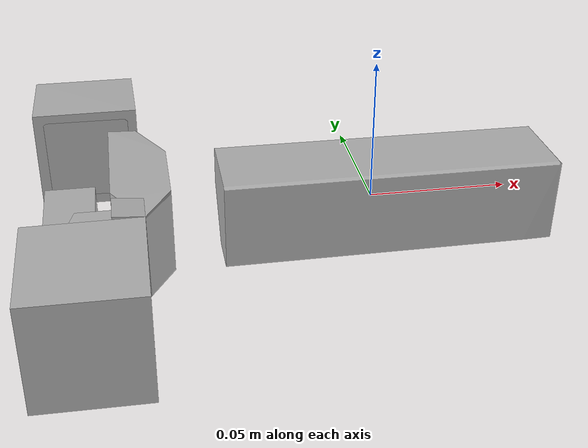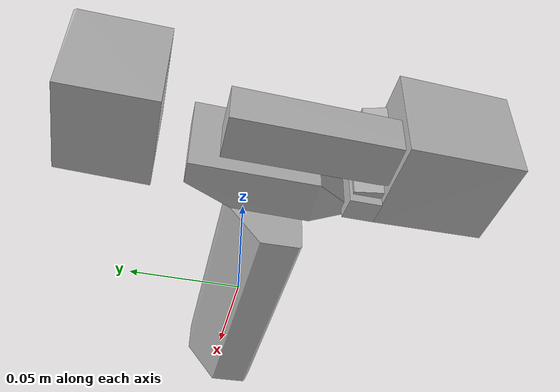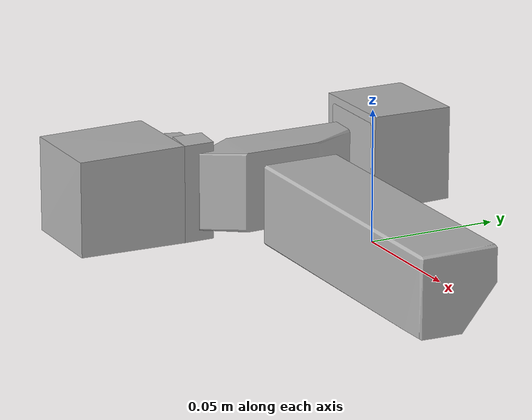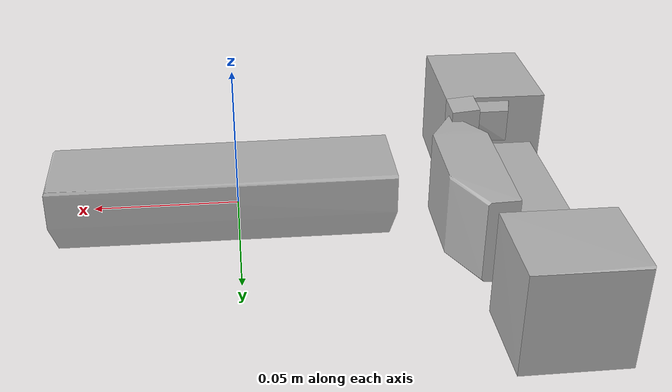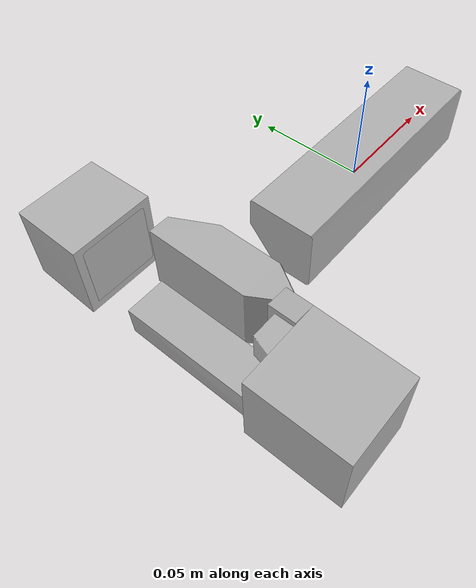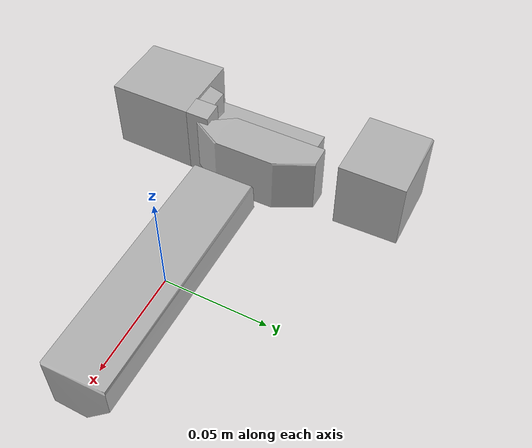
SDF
<?xml version="1.0"?>
<sdf version="1.7">
  <model name="t_shape">

    <link name="vertical_link">
      <inertial>
        <pose>0 0 0 0 0 0</pose>
        <mass>0.056</mass>
        <!-- Inertia values were calculated to be consistent with the mass and
             geometry size, assuming a uniform density. -->
        <inertia>
            <ixx>0.0000149296</ixx>
            <iyy>0.0001269296 </iyy>
            <izz>0.0001269296 </izz>
            <ixy>0.0</ixy>
            <ixz>0.0</ixz>
            <iyz>0.0</iyz>
        </inertia>
      </inertial>

       <visual name="convex_0">
        <pose>0 0 0 0 0 0</pose>
        <geometry>
          <mesh>
            <uri>push_t_white_convex_0.obj</uri>
          </mesh>
        </geometry>
        <material>
          <diffuse>0.7 0.7 0.7 1</diffuse>
        </material>
      </visual>
      <collision name="convex_0_volume">
        <pose>0 0 0 0 0 0</pose>
            <geometry>
          <mesh>
            <uri>push_t_white_convex_0.obj</uri>
          </mesh>
        </geometry>
        <drake:proximity_properties>
          <drake:compliant_hydroelastic/>
          <drake:hydroelastic_modulus> 3.0e7 </drake:hydroelastic_modulus>
          <drake:mesh_resolution_hint> 0.18 </drake:mesh_resolution_hint>
          <drake:hunt_crossley_dissipation>10</drake:hunt_crossley_dissipation>
          <drake:mu_dynamic>0.3</drake:mu_dynamic>
        </drake:proximity_properties>
      </collision>

       <visual name="convex_1">
        <pose>0 0 0 0 0 0</pose>
        <geometry>
          <mesh>
            <uri>push_t_white_convex_1.obj</uri>
          </mesh>
        </geometry>
        <material>
          <diffuse>0.7 0.7 0.7 1</diffuse>
        </material>
      </visual>
      <collision name="convex_1_volume">
        <pose>0 0 0 0 0 0</pose>
            <geometry>
          <mesh>
            <uri>push_t_white_convex_1.obj</uri>
          </mesh>
        </geometry>
        <drake:proximity_properties>
          <drake:compliant_hydroelastic/>
          <drake:hydroelastic_modulus> 3.0e7 </drake:hydroelastic_modulus>
          <drake:mesh_resolution_hint> 0.18 </drake:mesh_resolution_hint>
          <drake:hunt_crossley_dissipation>10</drake:hunt_crossley_dissipation>
          <drake:mu_dynamic>0.3</drake:mu_dynamic>
        </drake:proximity_properties>
      </collision>

       <visual name="convex_2">
        <pose>0 0 0 0 0 0</pose>
        <geometry>
          <mesh>
            <uri>push_t_white_convex_2.obj</uri>
          </mesh>
        </geometry>
        <material>
          <diffuse>0.7 0.7 0.7 1</diffuse>
        </material>
      </visual>
      <collision name="convex_2_volume">
        <pose>0 0 0 0 0 0</pose>
            <geometry>
          <mesh>
            <uri>push_t_white_convex_2.obj</uri>
          </mesh>
        </geometry>
        <drake:proximity_properties>
          <drake:compliant_hydroelastic/>
          <drake:hydroelastic_modulus> 3.0e7 </drake:hydroelastic_modulus>
          <drake:mesh_resolution_hint> 0.18 </drake:mesh_resolution_hint>
          <drake:hunt_crossley_dissipation>10</drake:hunt_crossley_dissipation>
          <drake:mu_dynamic>0.3</drake:mu_dynamic>
        </drake:proximity_properties>
      </collision>

       <visual name="convex_3">
        <pose>0 0 0 0 0 0</pose>
        <geometry>
          <mesh>
            <uri>push_t_white_convex_3.obj</uri>
          </mesh>
        </geometry>
        <material>
          <diffuse>0.7 0.7 0.7 1</diffuse>
        </material>
      </visual>
      <collision name="convex_3_volume">
        <pose>0 0 0 0 0 0</pose>
            <geometry>
          <mesh>
            <uri>push_t_white_convex_3.obj</uri>
          </mesh>
        </geometry>
        <drake:proximity_properties>
          <drake:compliant_hydroelastic/>
          <drake:hydroelastic_modulus> 3.0e7 </drake:hydroelastic_modulus>
          <drake:mesh_resolution_hint> 0.18 </drake:mesh_resolution_hint>
          <drake:hunt_crossley_dissipation>10</drake:hunt_crossley_dissipation>
          <drake:mu_dynamic>0.3</drake:mu_dynamic>
        </drake:proximity_properties>
      </collision>

       <visual name="convex_4">
        <pose>0 0 0 0 0 0</pose>
        <geometry>
          <mesh>
            <uri>push_t_white_convex_4.obj</uri>
          </mesh>
        </geometry>
        <material>
          <diffuse>0.7 0.7 0.7 1</diffuse>
        </material>
      </visual>
      <collision name="convex_4_volume">
        <pose>0 0 0 0 0 0</pose>
            <geometry>
          <mesh>
            <uri>push_t_white_convex_4.obj</uri>
          </mesh>
        </geometry>
        <drake:proximity_properties>
          <drake:compliant_hydroelastic/>
          <drake:hydroelastic_modulus> 3.0e7 </drake:hydroelastic_modulus>
          <drake:mesh_resolution_hint> 0.18 </drake:mesh_resolution_hint>
          <drake:hunt_crossley_dissipation>10</drake:hunt_crossley_dissipation>
          <drake:mu_dynamic>0.3</drake:mu_dynamic>
        </drake:proximity_properties>
      </collision>

       <visual name="convex_5">
        <pose>0 0 0 0 0 0</pose>
        <geometry>
          <mesh>
            <uri>push_t_white_convex_5.obj</uri>
          </mesh>
        </geometry>
        <material>
          <diffuse>0.7 0.7 0.7 1</diffuse>
        </material>
      </visual>
      <collision name="convex_5_volume">
        <pose>0 0 0 0 0 0</pose>
            <geometry>
          <mesh>
            <uri>push_t_white_convex_5.obj</uri>
          </mesh>
        </geometry>
        <drake:proximity_properties>
          <drake:compliant_hydroelastic/>
          <drake:hydroelastic_modulus> 3.0e7 </drake:hydroelastic_modulus>
          <drake:mesh_resolution_hint> 0.18 </drake:mesh_resolution_hint>
          <drake:hunt_crossley_dissipation>10</drake:hunt_crossley_dissipation>
          <drake:mu_dynamic>0.3</drake:mu_dynamic>
        </drake:proximity_properties>
      </collision>

       <visual name="convex_6">
        <pose>0 0 0 0 0 0</pose>
        <geometry>
          <mesh>
            <uri>push_t_white_convex_6.obj</uri>
          </mesh>
        </geometry>
        <material>
          <diffuse>0.7 0.7 0.7 1</diffuse>
        </material>
      </visual>
      <collision name="convex_6_volume">
        <pose>0 0 0 0 0 0</pose>
            <geometry>
          <mesh>
            <uri>push_t_white_convex_6.obj</uri>
          </mesh>
        </geometry>
        <drake:proximity_properties>
          <drake:compliant_hydroelastic/>
          <drake:hydroelastic_modulus> 3.0e7 </drake:hydroelastic_modulus>
          <drake:mesh_resolution_hint> 0.18 </drake:mesh_resolution_hint>
          <drake:hunt_crossley_dissipation>10</drake:hunt_crossley_dissipation>
          <drake:mu_dynamic>0.3</drake:mu_dynamic>
        </drake:proximity_properties>
      </collision>

       <visual name="convex_7">
        <pose>0 0 0 0 0 0</pose>
        <geometry>
          <mesh>
            <uri>push_t_white_convex_7.obj</uri>
          </mesh>
        </geometry>
        <material>
          <diffuse>0.7 0.7 0.7 1</diffuse>
        </material>
      </visual>
      <collision name="convex_7_volume">
        <pose>0 0 0 0 0 0</pose>
            <geometry>
          <mesh>
            <uri>push_t_white_convex_7.obj</uri>
          </mesh>
        </geometry>
        <drake:proximity_properties>
          <drake:compliant_hydroelastic/>
          <drake:hydroelastic_modulus> 3.0e7 </drake:hydroelastic_modulus>
          <drake:mesh_resolution_hint> 0.18 </drake:mesh_resolution_hint>
          <drake:hunt_crossley_dissipation>10</drake:hunt_crossley_dissipation>
          <drake:mu_dynamic>0.3</drake:mu_dynamic>
        </drake:proximity_properties>
      </collision>

       <visual name="convex_8">
        <pose>0 0 0 0 0 0</pose>
        <geometry>
          <mesh>
            <uri>push_t_white_convex_8.obj</uri>
          </mesh>
        </geometry>
        <material>
          <diffuse>0.7 0.7 0.7 1</diffuse>
        </material>
      </visual>
      <collision name="convex_8_volume">
        <pose>0 0 0 0 0 0</pose>
            <geometry>
          <mesh>
            <uri>push_t_white_convex_8.obj</uri>
          </mesh>
        </geometry>
        <drake:proximity_properties>
          <drake:compliant_hydroelastic/>
          <drake:hydroelastic_modulus> 3.0e7 </drake:hydroelastic_modulus>
          <drake:mesh_resolution_hint> 0.18 </drake:mesh_resolution_hint>
          <drake:hunt_crossley_dissipation>10</drake:hunt_crossley_dissipation>
          <drake:mu_dynamic>0.3</drake:mu_dynamic>
        </drake:proximity_properties>
      </collision>

       <visual name="convex_9">
        <pose>0 0 0 0 0 0</pose>
        <geometry>
          <mesh>
            <uri>push_t_white_convex_9.obj</uri>
          </mesh>
        </geometry>
        <material>
          <diffuse>0.7 0.7 0.7 1</diffuse>
        </material>
      </visual>
      <collision name="convex_9_volume">
        <pose>0 0 0 0 0 0</pose>
            <geometry>
          <mesh>
            <uri>push_t_white_convex_9.obj</uri>
          </mesh>
        </geometry>
        <drake:proximity_properties>
          <drake:compliant_hydroelastic/>
          <drake:hydroelastic_modulus> 3.0e7 </drake:hydroelastic_modulus>
          <drake:mesh_resolution_hint> 0.18 </drake:mesh_resolution_hint>
          <drake:hunt_crossley_dissipation>10</drake:hunt_crossley_dissipation>
          <drake:mu_dynamic>0.3</drake:mu_dynamic>
        </drake:proximity_properties>
      </collision>
    </link>

  </model>
</sdf>
